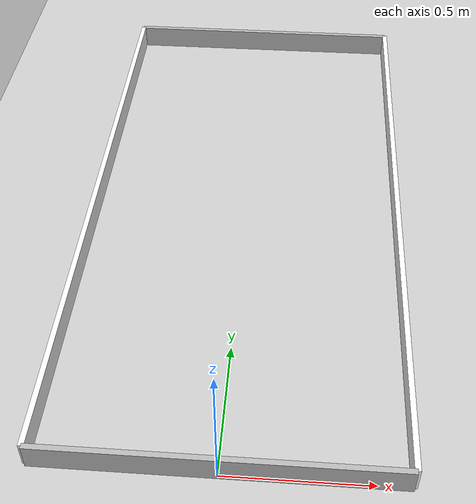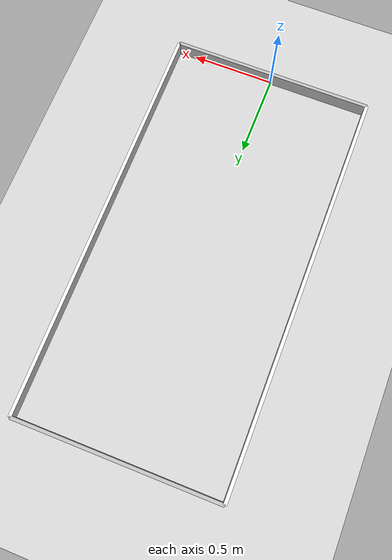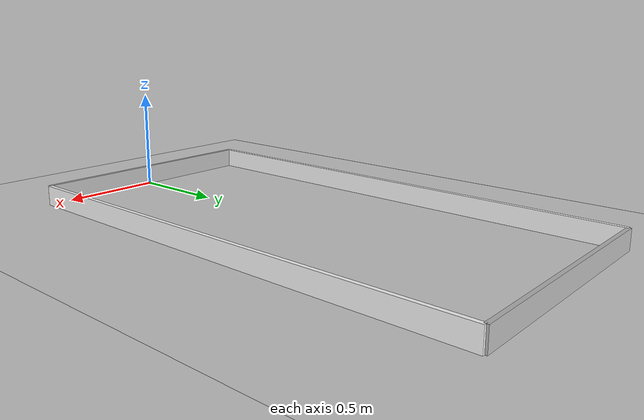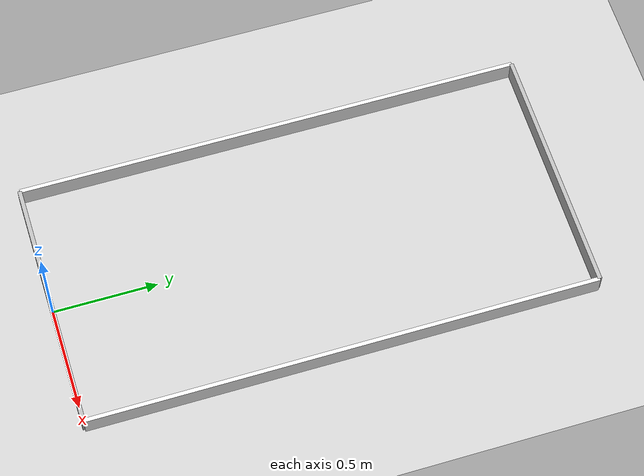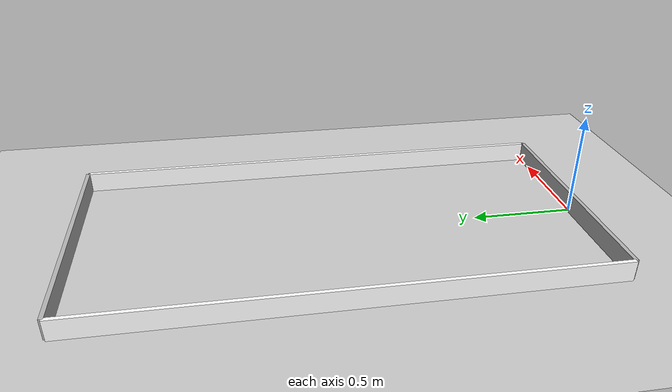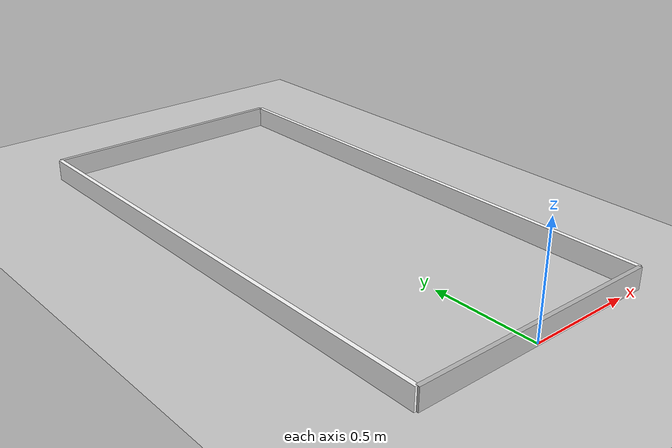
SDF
<?xml version="1.0"?>
<sdf version="1.4">
  <world name="default">
    <include>
      <uri>model://ground_plane</uri>
    </include>
    <include>
      <uri>model://sun</uri>
    </include>
    <model name="Walls">
      <static>true</static>
      <pose>0 0 0  0 0 0</pose>
      <link name="North Wall">
        <pose>0 0 0.05 0 0 0</pose>
        <collision name="collision">
          <geometry>
            <box>
              <size>1.22 0.02 0.1</size>
            </box>
          </geometry>
        </collision>
        <visual name="visual">
          <geometry>
            <box>
              <size>1.22 0.02 0.1</size>
            </box>
          </geometry>
        </visual>
      </link>
      <link name="South Wall">
        <pose> 0 2.44 .05 0 0 0</pose>
        <collision name="collision">
          <geometry>
            <box>
              <size>1.22 0.02 0.1</size>
            </box>
          </geometry>
        </collision>
        <visual name="visual">
          <geometry>
            <box>
              <size>1.22 0.02 0.1</size>
            </box>
          </geometry>
        </visual>
      </link>
      <link name="East Wall">
        <pose> 0.61 1.22 .05 0 0 1.5708</pose>
        <collision name="collision">
          <geometry>
            <box>
              <size>2.44 0.02 0.1</size>
            </box>
          </geometry>
        </collision>
        <visual name="visual">
          <geometry>
            <box>
              <size>2.44 0.02 0.1</size>
            </box>
          </geometry>
          <material>
            <ambient> 1 1 1 1 </ambient>
            <diffuse> 1 1 1 1 </diffuse>
            <specular> .1 .1 .1 1 </specular>
            <emissive> 0 0 0 0 </emissive>
          </material>
        </visual>
      </link>
      <link name="West Wall">
        <pose> -0.61 1.22 .05 0 0 1.5708</pose>
        <collision name="collision">
          <geometry>
            <box>
              <size>2.44 0.02 0.1</size>
            </box>
          </geometry>
        </collision>
        <visual name="visual">
          <geometry>
            <box>
              <size>2.44 0.02 0.1</size>
            </box>
          </geometry>
          <material>
            <ambient> 1 1 1 1 </ambient>
            <diffuse> 1 1 1 1 </diffuse>
            <specular> .1 .1 .1 1 </specular>
            <emissive> 0 0 0 0 </emissive>
          </material>
        </visual>
      </link>
    </model>
  </world>
</sdf>
